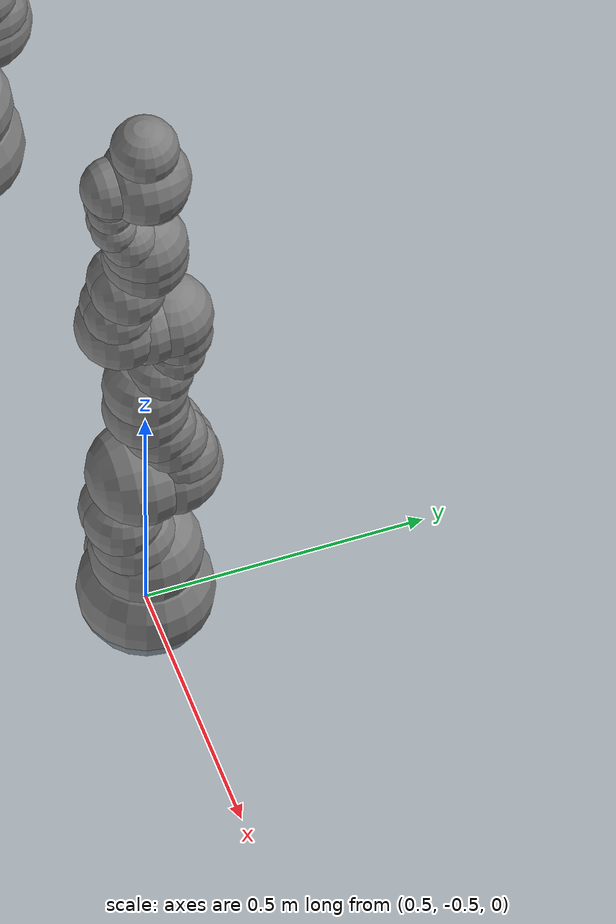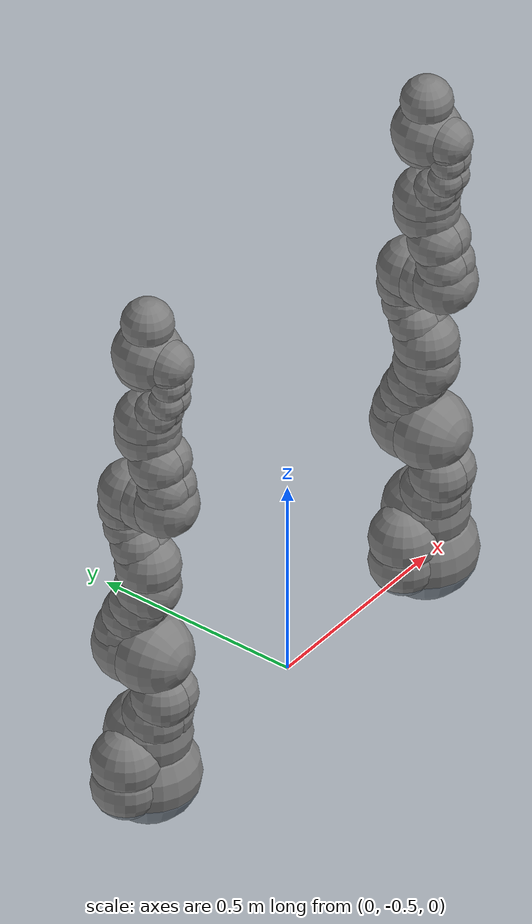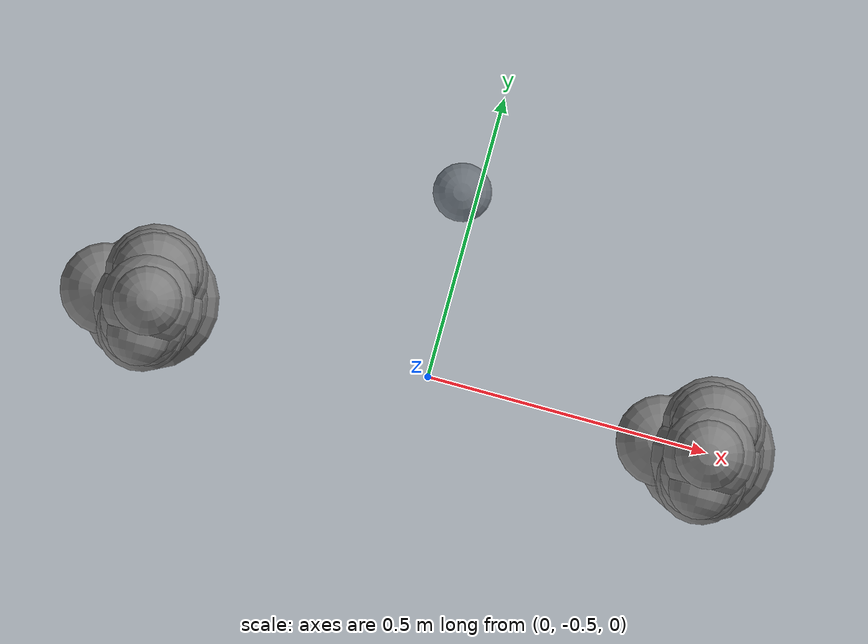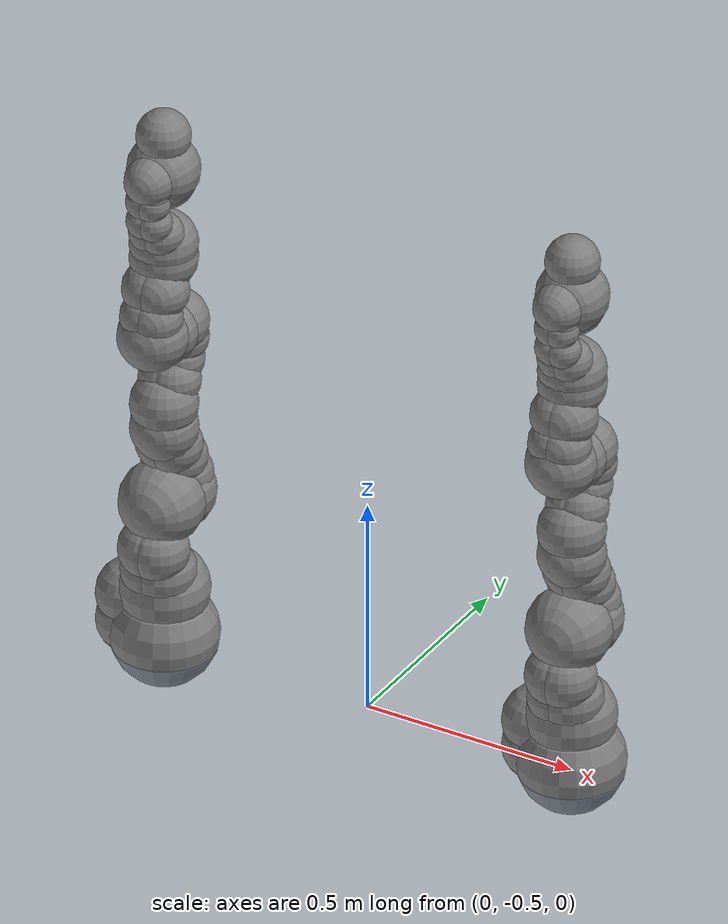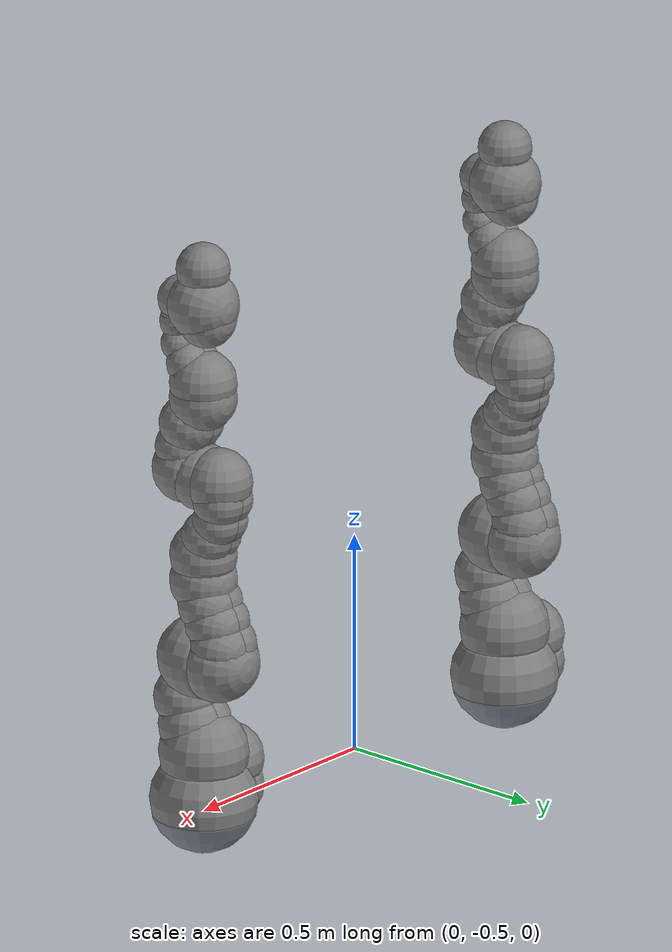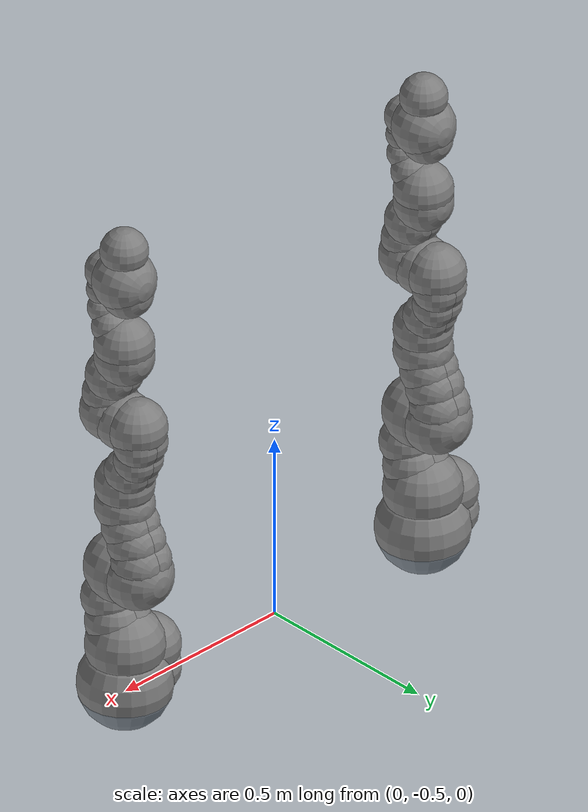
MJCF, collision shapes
<mujoco model="iiwa14 scene">
  <compiler angle="radian" meshdir="assets" autolimits="true"/>

  <option gravity="0 0 0"/>

  <default>
    <default class="iiwa">
      <material specular="0.5" shininess="0.25"/>
      <joint axis="0 0 1"/>
      <general gaintype="fixed" biastype="affine" gainprm="2000" biasprm="0 -2000 -200"/>
      <default class="joint1">
        <default class="joint2">
        </default>
      </default>
      <default class="joint3">
      </default>
      <default class="visual">
        <geom type="mesh" contype="0" conaffinity="0" group="2" material="gray"/>
      </default>
      <default class="collision">
        <geom group="3"/>
      </default>
    </default>

    <default class="iiwa_shade">
      <material specular="0.5" shininess="0.25"/>
      <joint axis="0 0 1"/>
      <general gaintype="fixed" biastype="affine" gainprm="2000" biasprm="0 -2000 -200"/>
      <default class="joint1_shade">
        <default class="joint2_shade">
        </default>
      </default>
      <default class="joint3_shade">
      </default>
      <default class="visual_shade">
        <geom type="mesh" contype="0" conaffinity="0" group="2" material="gray_shade"/>
      </default>
      <default class="collision_shade">
        <geom contype="0" conaffinity="0" group="3"/>
      </default>
    </default>
  </default>

  <asset>
    <material class="iiwa" name="gray" rgba="0.4 0.4 0.4 1"/>
    <material class="iiwa" name="light_gray" rgba="0.6 0.6 0.6 1"/>
    <material class="iiwa" name="black" rgba="0 0 0 1"/>
    <material class="iiwa" name="orange" rgba="1 0.423529 0.0392157 1"/>

    <material class="iiwa_shade" name="gray_shade" rgba="0.4 0.7 0.4 0.0000"/>
    <material class="iiwa_shade" name="light_gray_shade" rgba="0.6 0.9 0.6 0.0000"/>
    <material class="iiwa_shade" name="black_shade" rgba="0 0.3 0 0.0000"/>
    <material class="iiwa_shade" name="orange_shade" rgba="1 0.723529 0.0392157 0.0000"/>

    <mesh file="link_0.obj"/>
    <mesh file="link_1.obj"/>
    <mesh file="link_2_orange.obj"/>
    <mesh file="link_2_grey.obj"/>
    <mesh file="link_3.obj"/>
    <mesh file="band.obj"/>
    <mesh file="kuka.obj"/>
    <mesh file="link_4_orange.obj"/>
    <mesh file="link_4_grey.obj"/>
    <mesh file="link_5.obj"/>
    <mesh file="link_6_orange.obj"/>
    <mesh file="link_6_grey.obj"/>
    <mesh file="link_7.obj"/>

    <mesh scale="0.88 0.88 0.88" name="link_0_shade" file="link_0.obj"/>
    <mesh scale="0.88 0.88 0.88" name="link_1_shade" file="link_1.obj"/>
    <mesh scale="0.88 0.88 0.88" name="link_2_orange_shade" file="link_2_orange.obj"/>
    <mesh scale="0.88 0.88 0.88" name="link_2_grey_shade" file="link_2_grey.obj"/>
    <mesh scale="0.88 0.88 0.88" name="link_3_shade" file="link_3.obj"/>
    <mesh scale="0.88 0.88 0.88" name="band_shade" file="band.obj"/>
    <mesh scale="0.88 0.88 0.88" name="kuka_shade" file="kuka.obj"/>
    <mesh scale="0.88 0.88 0.88" name="link_4_orange_shade" file="link_4_orange.obj"/>
    <mesh scale="0.88 0.88 0.88" name="link_4_grey_shade" file="link_4_grey.obj"/>
    <mesh scale="0.88 0.88 0.88" name="link_5_shade" file="link_5.obj"/>
    <mesh scale="0.88 0.88 0.88" name="link_6_orange_shade" file="link_6_orange.obj"/>
    <mesh scale="0.88 0.88 0.88" name="link_6_grey_shade" file="link_6_grey.obj"/>
    <mesh scale="0.88 0.88 0.88" name="link_7_shade" file="link_7.obj"/>
  </asset>

  <statistic center="0.2 0 0.2" extent="1.0"/>

  <visual>
    <headlight diffuse="0.6 0.6 0.6" ambient="0.3 0.3 0.3" specular="0 0 0"/>
    <rgba haze="0.15 0.25 0.35 1"/>
    <global azimuth="-120" elevation="-20"/>
  </visual>

  <asset>
    <texture type="skybox" builtin="gradient" rgb1="0.3 0.5 0.7" rgb2="0 0 0" width="512" height="3072"/>
    <texture type="2d" name="groundplane" builtin="checker" mark="edge" rgb1="0.4 0.5 0.6" rgb2="0.3 0.4 0.5"
      markrgb="0.8 0.8 0.8" width="300" height="300"/>
    <material name="groundplane" texture="groundplane" texuniform="true" texrepeat="5 5" reflectance="0.2"/>
  </asset>

  <worldbody>

    <body name="model_instance_0" pos="-0.5 -0.5 0" euler="0 0 0">
      <body name="base_0" childclass="iiwa">
        <geom class="visual" mesh="link_0"/>
        <geom class="collision" size="0.12" pos="0 0 0.03"/>
        <geom class="collision" size="0.08" pos="-0.08 0 0.103"/>
        <geom class="collision" size="0.08" pos="-0.08 0 0.04"/>
        <geom class="collision" size="0.1" pos="0 0 0.14"/>
        <body name="link1_0" pos="0 0 0.1575">
          <joint name="joint1_0" class="joint1"/>
          <geom class="visual" mesh="link_1"/>
          <geom class="collision" size="0.08" pos="0 0 -0.0005"/>
          <geom class="collision" size="0.075" pos="0.01 -0.025 0.0425"/>
          <geom class="collision" size="0.075" pos="-0.01 -0.025 0.0425"/>
          <geom class="collision" size="0.07" pos="0.01 -0.045 0.1025"/>
          <geom class="collision" size="0.07" pos="-0.01 -0.045 0.1025"/>
          <body name="link2_0" pos="0 0 0.2025" quat="0 0 1 1">
            <joint name="joint2_0" class="joint2"/>
            <geom class="visual" material="orange" mesh="link_2_orange"/>
            <geom class="visual" mesh="link_2_grey"/>
            <geom class="collision" size="0.095" pos="0 0 -0.01"/>
            <geom class="collision" size="0.09" pos="0 0 0.045"/>
            <geom class="collision" size="0.07" pos="-0.01 0.04 0.054"/>
            <geom class="collision" size="0.065" pos="-0.01 0.09 0.04"/>
            <geom class="collision" size="0.065" pos="-0.01 0.13 0.02"/>
            <geom class="collision" size="0.07" pos="0.01 0.04 0.054"/>
            <geom class="collision" size="0.065" pos="0.01 0.09 0.04"/>
            <geom class="collision" size="0.065" pos="0.01 0.13 0.02"/>
            <geom class="collision" size="0.075" pos="0 0.18 0"/>
            <body name="link3_0" pos="0 0.2045 0" quat="0 0 1 1">
              <joint name="joint3_0" class="joint1"/>
              <geom class="visual" mesh="link_3"/>
              <geom class="visual" material="light_gray" mesh="band"/>
              <geom class="visual" material="black" mesh="kuka"/>
              <geom class="collision" size="0.075" pos="0 0 0.0355"/>
              <geom class="collision" size="0.06" pos="0.01 0.023 0.0855"/>
              <geom class="collision" size="0.055" pos="0.01 0.048 0.1255"/>
              <geom class="collision" size="0.06" pos="0.01 0.056 0.1755"/>
              <geom class="collision" size="0.06" pos="-0.01 0.023 0.0855"/>
              <geom class="collision" size="0.055" pos="-0.01 0.048 0.1255"/>
              <geom class="collision" size="0.06" pos="-0.01 0.056 0.1755"/>
              <geom class="collision" size="0.075" pos="0 0.045 0.2155"/>
              <geom class="collision" size="0.075" pos="0 0 0.2155"/>
              <body name="link4_0" pos="0 0 0.2155" quat="1 1 0 0">
                <joint name="joint4_0" class="joint2"/>
                <geom class="visual" material="orange" mesh="link_4_orange"/>
                <geom class="visual" mesh="link_4_grey"/>
                <geom class="collision" size="0.078" pos="0 0.01 0.046"/>
                <geom class="collision" size="0.06" pos="0.01 0.06 0.052"/>
                <geom class="collision" size="0.065" pos="0.01 0.12 0.034"/>
                <geom class="collision" size="0.06" pos="-0.01 0.06 0.052"/>
                <geom class="collision" size="0.065" pos="-0.01 0.12 0.034"/>
                <geom class="collision" size="0.075" pos="0 0.184 0"/>
                <body name="link5_0" pos="0 0.1845 0" quat="0 0 1 1">
                  <joint name="joint5_0" class="joint1"/>
                  <geom class="visual" mesh="link_5"/>
                  <geom class="visual" material="light_gray" mesh="band"/>
                  <geom class="visual" material="black" mesh="kuka"/>
                  <geom class="collision" size="0.075" pos="0 0 0.0335"/>
                  <geom class="collision" size="0.05" pos="-0.012 0.031 0.0755"/>
                  <geom class="collision" size="0.05" pos="0.012 0.031 0.0755"/>
                  <geom class="collision" size="0.04" pos="-0.012 0.06 0.1155"/>
                  <geom class="collision" size="0.04" pos="0.012 0.06 0.1155"/>
                  <geom class="collision" size="0.04" pos="-0.01 0.065 0.1655"/>
                  <geom class="collision" size="0.04" pos="0.01 0.065 0.1655"/>
                  <geom class="collision" size="0.035" pos="-0.012 0.065 0.1855"/>
                  <geom class="collision" size="0.035" pos="0.012 0.065 0.1855"/>
                  <body name="link6_0" pos="0 0 0.2155" quat="1 1 0 0">
                    <joint name="joint6_0" class="joint2"/>
                    <geom class="visual" material="orange" mesh="link_6_orange"/>
                    <geom class="visual" mesh="link_6_grey"/>
                    <geom class="collision" size="0.055" pos="0 0 -0.059"/>
                    <geom class="collision" size="0.065" pos="0 -0.03 0.011"/>
                    <geom class="collision" size="0.08"/>
                    <body name="link7_0" pos="0 0.081 0" quat="0 0 1 1">
                      <joint name="joint7_0" class="joint3"/>
                      <geom class="visual" mesh="link_7"/>
                      <geom class="collision" size="0.06" pos="0 0 0.001"/>
                    </body>
                  </body>
                </body>
              </body>
            </body>
          </body>
        </body>
      </body>
    </body>

    <body name="model_instance_1" pos=" 0.5 -0.5 0" euler="0 0 0">
      <body name="base_1" childclass="iiwa">
        <geom class="visual" mesh="link_0"/>
        <geom class="collision" size="0.12" pos="0 0 0.03"/>
        <geom class="collision" size="0.08" pos="-0.08 0 0.103"/>
        <geom class="collision" size="0.08" pos="-0.08 0 0.04"/>
        <geom class="collision" size="0.1" pos="0 0 0.14"/>
        <body name="link1_1" pos="0 0 0.1575">
          <joint name="joint1_1" class="joint1"/>
          <geom class="visual" mesh="link_1"/>
          <geom class="collision" size="0.08" pos="0 0 -0.0005"/>
          <geom class="collision" size="0.075" pos="0.01 -0.025 0.0425"/>
          <geom class="collision" size="0.075" pos="-0.01 -0.025 0.0425"/>
          <geom class="collision" size="0.07" pos="0.01 -0.045 0.1025"/>
          <geom class="collision" size="0.07" pos="-0.01 -0.045 0.1025"/>
          <body name="link2_1" pos="0 0 0.2025" quat="0 0 1 1">
            <joint name="joint2_1" class="joint2"/>
            <geom class="visual" material="orange" mesh="link_2_orange"/>
            <geom class="visual" mesh="link_2_grey"/>
            <geom class="collision" size="0.095" pos="0 0 -0.01"/>
            <geom class="collision" size="0.09" pos="0 0 0.045"/>
            <geom class="collision" size="0.07" pos="-0.01 0.04 0.054"/>
            <geom class="collision" size="0.065" pos="-0.01 0.09 0.04"/>
            <geom class="collision" size="0.065" pos="-0.01 0.13 0.02"/>
            <geom class="collision" size="0.07" pos="0.01 0.04 0.054"/>
            <geom class="collision" size="0.065" pos="0.01 0.09 0.04"/>
            <geom class="collision" size="0.065" pos="0.01 0.13 0.02"/>
            <geom class="collision" size="0.075" pos="0 0.18 0"/>
            <body name="link3_1" pos="0 0.2045 0" quat="0 0 1 1">
              <joint name="joint3_1" class="joint1"/>
              <geom class="visual" mesh="link_3"/>
              <geom class="visual" material="light_gray" mesh="band"/>
              <geom class="visual" material="black" mesh="kuka"/>
              <geom class="collision" size="0.075" pos="0 0 0.0355"/>
              <geom class="collision" size="0.06" pos="0.01 0.023 0.0855"/>
              <geom class="collision" size="0.055" pos="0.01 0.048 0.1255"/>
              <geom class="collision" size="0.06" pos="0.01 0.056 0.1755"/>
              <geom class="collision" size="0.06" pos="-0.01 0.023 0.0855"/>
              <geom class="collision" size="0.055" pos="-0.01 0.048 0.1255"/>
              <geom class="collision" size="0.06" pos="-0.01 0.056 0.1755"/>
              <geom class="collision" size="0.075" pos="0 0.045 0.2155"/>
              <geom class="collision" size="0.075" pos="0 0 0.2155"/>
              <body name="link4_1" pos="0 0 0.2155" quat="1 1 0 0">
                <joint name="joint4_1" class="joint2"/>
                <geom class="visual" material="orange" mesh="link_4_orange"/>
                <geom class="visual" mesh="link_4_grey"/>
                <geom class="collision" size="0.078" pos="0 0.01 0.046"/>
                <geom class="collision" size="0.06" pos="0.01 0.06 0.052"/>
                <geom class="collision" size="0.065" pos="0.01 0.12 0.034"/>
                <geom class="collision" size="0.06" pos="-0.01 0.06 0.052"/>
                <geom class="collision" size="0.065" pos="-0.01 0.12 0.034"/>
                <geom class="collision" size="0.075" pos="0 0.184 0"/>
                <body name="link5_1" pos="0 0.1845 0" quat="0 0 1 1">
                  <joint name="joint5_1" class="joint1"/>
                  <geom class="visual" mesh="link_5"/>
                  <geom class="visual" material="light_gray" mesh="band"/>
                  <geom class="visual" material="black" mesh="kuka"/>
                  <geom class="collision" size="0.075" pos="0 0 0.0335"/>
                  <geom class="collision" size="0.05" pos="-0.012 0.031 0.0755"/>
                  <geom class="collision" size="0.05" pos="0.012 0.031 0.0755"/>
                  <geom class="collision" size="0.04" pos="-0.012 0.06 0.1155"/>
                  <geom class="collision" size="0.04" pos="0.012 0.06 0.1155"/>
                  <geom class="collision" size="0.04" pos="-0.01 0.065 0.1655"/>
                  <geom class="collision" size="0.04" pos="0.01 0.065 0.1655"/>
                  <geom class="collision" size="0.035" pos="-0.012 0.065 0.1855"/>
                  <geom class="collision" size="0.035" pos="0.012 0.065 0.1855"/>
                  <body name="link6_1" pos="0 0 0.2155" quat="1 1 0 0">
                    <joint name="joint6_1" class="joint2"/>
                    <geom class="visual" material="orange" mesh="link_6_orange"/>
                    <geom class="visual" mesh="link_6_grey"/>
                    <geom class="collision" size="0.055" pos="0 0 -0.059"/>
                    <geom class="collision" size="0.065" pos="0 -0.03 0.011"/>
                    <geom class="collision" size="0.08"/>
                    <body name="link7_1" pos="0 0.081 0" quat="0 0 1 1">
                      <joint name="joint7_1" class="joint3"/>
                      <geom class="visual" mesh="link_7"/>
                      <geom class="collision" size="0.06" pos="0 0 0.001"/>
                    </body>
                  </body>
                </body>
              </body>
            </body>
          </body>
        </body>
      </body>
    </body>

    <body name="model_shade_0" pos="-0.5 -0.5 0" euler="0 0 0">
      <body name="base_0_shade" childclass="iiwa_shade">
        <geom class="visual_shade" mesh="link_0_shade"/>
        <geom class="collision_shade" size="0.12" pos="0 0 0.03"/>
        <geom class="collision_shade" size="0.08" pos="-0.08 0 0.103"/>
        <geom class="collision_shade" size="0.08" pos="-0.08 0 0.04"/>
        <geom class="collision_shade" size="0.1" pos="0 0 0.14"/>
        <body name="link1_0_shade" pos="0 0 0.1575">
          <joint name="joint1_0_shade" class="joint1_shade"/>
          <geom class="visual_shade" mesh="link_1_shade"/>
          <geom class="collision_shade" size="0.08" pos="0 0 -0.0005"/>
          <geom class="collision_shade" size="0.075" pos="0.01 -0.025 0.0425"/>
          <geom class="collision_shade" size="0.075" pos="-0.01 -0.025 0.0425"/>
          <geom class="collision_shade" size="0.07" pos="0.01 -0.045 0.1025"/>
          <geom class="collision_shade" size="0.07" pos="-0.01 -0.045 0.1025"/>
          <body name="link2_0_shade" pos="0 0 0.2025" quat="0 0 1 1">
            <joint name="joint2_0_shade" class="joint2_shade"/>
            <geom class="visual_shade" material="orange_shade" mesh="link_2_orange_shade"/>
            <geom class="visual_shade" mesh="link_2_grey_shade"/>
            <geom class="collision_shade" size="0.095" pos="0 0 -0.01"/>
            <geom class="collision_shade" size="0.09" pos="0 0 0.045"/>
            <geom class="collision_shade" size="0.07" pos="-0.01 0.04 0.054"/>
            <geom class="collision_shade" size="0.065" pos="-0.01 0.09 0.04"/>
            <geom class="collision_shade" size="0.065" pos="-0.01 0.13 0.02"/>
            <geom class="collision_shade" size="0.07" pos="0.01 0.04 0.054"/>
            <geom class="collision_shade" size="0.065" pos="0.01 0.09 0.04"/>
            <geom class="collision_shade" size="0.065" pos="0.01 0.13 0.02"/>
            <geom class="collision_shade" size="0.075" pos="0 0.18 0"/>
            <body name="link3_0_shade" pos="0 0.2045 0" quat="0 0 1 1">
              <joint name="joint3_0_shade" class="joint1_shade"/>
              <geom class="visual_shade" mesh="link_3_shade"/>
              <geom class="visual_shade" material="light_gray_shade" mesh="band_shade"/>
              <geom class="visual_shade" material="black_shade" mesh="kuka_shade"/>
              <geom class="collision_shade" size="0.075" pos="0 0 0.0355"/>
              <geom class="collision_shade" size="0.06" pos="0.01 0.023 0.0855"/>
              <geom class="collision_shade" size="0.055" pos="0.01 0.048 0.1255"/>
              <geom class="collision_shade" size="0.06" pos="0.01 0.056 0.1755"/>
              <geom class="collision_shade" size="0.06" pos="-0.01 0.023 0.0855"/>
              <geom class="collision_shade" size="0.055" pos="-0.01 0.048 0.1255"/>
              <geom class="collision_shade" size="0.06" pos="-0.01 0.056 0.1755"/>
              <geom class="collision_shade" size="0.075" pos="0 0.045 0.2155"/>
              <geom class="collision_shade" size="0.075" pos="0 0 0.2155"/>
              <body name="link4_0_shade" pos="0 0 0.2155" quat="1 1 0 0">
                <joint name="joint4_0_shade" class="joint2_shade"/>
                <geom class="visual_shade" material="orange_shade" mesh="link_4_orange_shade"/>
                <geom class="visual_shade" mesh="link_4_grey_shade"/>
                <geom class="collision_shade" size="0.078" pos="0 0.01 0.046"/>
                <geom class="collision_shade" size="0.06" pos="0.01 0.06 0.052"/>
                <geom class="collision_shade" size="0.065" pos="0.01 0.12 0.034"/>
                <geom class="collision_shade" size="0.06" pos="-0.01 0.06 0.052"/>
                <geom class="collision_shade" size="0.065" pos="-0.01 0.12 0.034"/>
                <geom class="collision_shade" size="0.075" pos="0 0.184 0"/>
                <body name="link5_0_shade" pos="0 0.1845 0" quat="0 0 1 1">
                  <joint name="joint5_0_shade" class="joint1_shade"/>
                  <geom class="visual_shade" mesh="link_5_shade"/>
                  <geom class="visual_shade" material="light_gray_shade" mesh="band_shade"/>
                  <geom class="visual_shade" material="black_shade" mesh="kuka_shade"/>
                  <geom class="collision_shade" size="0.075" pos="0 0 0.0335"/>
                  <geom class="collision_shade" size="0.05" pos="-0.012 0.031 0.0755"/>
                  <geom class="collision_shade" size="0.05" pos="0.012 0.031 0.0755"/>
                  <geom class="collision_shade" size="0.04" pos="-0.012 0.06 0.1155"/>
                  <geom class="collision_shade" size="0.04" pos="0.012 0.06 0.1155"/>
                  <geom class="collision_shade" size="0.04" pos="-0.01 0.065 0.1655"/>
                  <geom class="collision_shade" size="0.04" pos="0.01 0.065 0.1655"/>
                  <geom class="collision_shade" size="0.035" pos="-0.012 0.065 0.1855"/>
                  <geom class="collision_shade" size="0.035" pos="0.012 0.065 0.1855"/>
                  <body name="link6_0_shade" pos="0 0 0.2155" quat="1 1 0 0">
                    <joint name="joint6_0_shade" class="joint2_shade"/>
                    <geom class="visual_shade" material="orange_shade" mesh="link_6_orange_shade"/>
                    <geom class="visual_shade" mesh="link_6_grey_shade"/>
                    <geom class="collision_shade" size="0.055" pos="0 0 -0.059"/>
                    <geom class="collision_shade" size="0.065" pos="0 -0.03 0.011"/>
                    <geom class="collision_shade" size="0.08"/>
                    <body name="link7_0_shade" pos="0 0.081 0" quat="0 0 1 1">
                      <joint name="joint7_0_shade" class="joint3_shade"/>
                      <geom class="visual_shade" mesh="link_7_shade"/>
                      <geom class="collision_shade" size="0.06" pos="0 0 0.001"/>
                    </body>
                  </body>
                </body>
              </body>
            </body>
          </body>
        </body>
      </body>
    </body>

    <body name="model_shade_1" pos=" 0.5 -0.5 0" euler="0 0 0">
      <body name="base_1_shade" childclass="iiwa_shade">
        <geom class="visual_shade" mesh="link_0_shade"/>
        <geom class="collision_shade" size="0.12" pos="0 0 0.03"/>
        <geom class="collision_shade" size="0.08" pos="-0.08 0 0.103"/>
        <geom class="collision_shade" size="0.08" pos="-0.08 0 0.04"/>
        <geom class="collision_shade" size="0.1" pos="0 0 0.14"/>
        <body name="link1_1_shade" pos="0 0 0.1575">
          <joint name="joint1_1_shade" class="joint1_shade"/>
          <geom class="visual_shade" mesh="link_1_shade"/>
          <geom class="collision_shade" size="0.08" pos="0 0 -0.0005"/>
          <geom class="collision_shade" size="0.075" pos="0.01 -0.025 0.0425"/>
          <geom class="collision_shade" size="0.075" pos="-0.01 -0.025 0.0425"/>
          <geom class="collision_shade" size="0.07" pos="0.01 -0.045 0.1025"/>
          <geom class="collision_shade" size="0.07" pos="-0.01 -0.045 0.1025"/>
          <body name="link2_1_shade" pos="0 0 0.2025" quat="0 0 1 1">
            <joint name="joint2_1_shade" class="joint2_shade"/>
            <geom class="visual_shade" material="orange_shade" mesh="link_2_orange_shade"/>
            <geom class="visual_shade" mesh="link_2_grey_shade"/>
            <geom class="collision_shade" size="0.095" pos="0 0 -0.01"/>
            <geom class="collision_shade" size="0.09" pos="0 0 0.045"/>
            <geom class="collision_shade" size="0.07" pos="-0.01 0.04 0.054"/>
            <geom class="collision_shade" size="0.065" pos="-0.01 0.09 0.04"/>
            <geom class="collision_shade" size="0.065" pos="-0.01 0.13 0.02"/>
            <geom class="collision_shade" size="0.07" pos="0.01 0.04 0.054"/>
            <geom class="collision_shade" size="0.065" pos="0.01 0.09 0.04"/>
            <geom class="collision_shade" size="0.065" pos="0.01 0.13 0.02"/>
            <geom class="collision_shade" size="0.075" pos="0 0.18 0"/>
            <body name="link3_1_shade" pos="0 0.2045 0" quat="0 0 1 1">
              <joint name="joint3_1_shade" class="joint1_shade"/>
              <geom class="visual_shade" mesh="link_3_shade"/>
              <geom class="visual_shade" material="light_gray_shade" mesh="band_shade"/>
              <geom class="visual_shade" material="black_shade" mesh="kuka_shade"/>
              <geom class="collision_shade" size="0.075" pos="0 0 0.0355"/>
              <geom class="collision_shade" size="0.06" pos="0.01 0.023 0.0855"/>
              <geom class="collision_shade" size="0.055" pos="0.01 0.048 0.1255"/>
              <geom class="collision_shade" size="0.06" pos="0.01 0.056 0.1755"/>
              <geom class="collision_shade" size="0.06" pos="-0.01 0.023 0.0855"/>
              <geom class="collision_shade" size="0.055" pos="-0.01 0.048 0.1255"/>
              <geom class="collision_shade" size="0.06" pos="-0.01 0.056 0.1755"/>
              <geom class="collision_shade" size="0.075" pos="0 0.045 0.2155"/>
              <geom class="collision_shade" size="0.075" pos="0 0 0.2155"/>
              <body name="link4_1_shade" pos="0 0 0.2155" quat="1 1 0 0">
                <joint name="joint4_1_shade" class="joint2_shade"/>
                <geom class="visual_shade" material="orange_shade" mesh="link_4_orange_shade"/>
                <geom class="visual_shade" mesh="link_4_grey_shade"/>
                <geom class="collision_shade" size="0.078" pos="0 0.01 0.046"/>
                <geom class="collision_shade" size="0.06" pos="0.01 0.06 0.052"/>
                <geom class="collision_shade" size="0.065" pos="0.01 0.12 0.034"/>
                <geom class="collision_shade" size="0.06" pos="-0.01 0.06 0.052"/>
                <geom class="collision_shade" size="0.065" pos="-0.01 0.12 0.034"/>
                <geom class="collision_shade" size="0.075" pos="0 0.184 0"/>
                <body name="link5_1_shade" pos="0 0.1845 0" quat="0 0 1 1">
                  <joint name="joint5_1_shade" class="joint1_shade"/>
                  <geom class="visual_shade" mesh="link_5_shade"/>
                  <geom class="visual_shade" material="light_gray_shade" mesh="band_shade"/>
                  <geom class="visual_shade" material="black_shade" mesh="kuka_shade"/>
                  <geom class="collision_shade" size="0.075" pos="0 0 0.0335"/>
                  <geom class="collision_shade" size="0.05" pos="-0.012 0.031 0.0755"/>
                  <geom class="collision_shade" size="0.05" pos="0.012 0.031 0.0755"/>
                  <geom class="collision_shade" size="0.04" pos="-0.012 0.06 0.1155"/>
                  <geom class="collision_shade" size="0.04" pos="0.012 0.06 0.1155"/>
                  <geom class="collision_shade" size="0.04" pos="-0.01 0.065 0.1655"/>
                  <geom class="collision_shade" size="0.04" pos="0.01 0.065 0.1655"/>
                  <geom class="collision_shade" size="0.035" pos="-0.012 0.065 0.1855"/>
                  <geom class="collision_shade" size="0.035" pos="0.012 0.065 0.1855"/>
                  <body name="link6_1_shade" pos="0 0 0.2155" quat="1 1 0 0">
                    <joint name="joint6_1_shade" class="joint2_shade"/>
                    <geom class="visual_shade" material="orange_shade" mesh="link_6_orange_shade"/>
                    <geom class="visual_shade" mesh="link_6_grey_shade"/>
                    <geom class="collision_shade" size="0.055" pos="0 0 -0.059"/>
                    <geom class="collision_shade" size="0.065" pos="0 -0.03 0.011"/>
                    <geom class="collision_shade" size="0.08"/>
                    <body name="link7_1_shade" pos="0 0.081 0" quat="0 0 1 1">
                      <joint name="joint7_1_shade" class="joint3_shade"/>
                      <geom class="visual_shade" mesh="link_7_shade"/>
                      <geom class="collision_shade" size="0.06" pos="0 0 0.001"/>
                    </body>
                  </body>
                </body>
              </body>
            </body>
          </body>
        </body>
      </body>
    </body>

    <body name="sudo sphere">
        <geom name="sudo sphere 1" type="sphere" size="0.1" pos="0.0 0.0 -100.0" contype="0" conaffinity="0"/>
    </body>
    <light pos="0 0 1.5" dir="0 0 -1" directional="true"/>
    <geom name="floor" size="0 0 0.05" type="plane" material="groundplane"/>
  </worldbody>

  <contact>
    <exclude body1="base_0" body2="link1_0"/>
    <exclude body1="base_0" body2="link2_0"/>
    <exclude body1="base_0" body2="link3_0"/>
    <exclude body1="link1_0" body2="link3_0"/>
    <exclude body1="link3_0" body2="link5_0"/>
    <exclude body1="link4_0" body2="link7_0"/>
    <exclude body1="link5_0" body2="link7_0"/>

    <exclude body1="base_1" body2="link1_1"/>
    <exclude body1="base_1" body2="link2_1"/>
    <exclude body1="base_1" body2="link3_1"/>
    <exclude body1="link1_1" body2="link3_1"/>
    <exclude body1="link3_1" body2="link5_1"/>
    <exclude body1="link4_1" body2="link7_1"/>
    <exclude body1="link5_1" body2="link7_1"/>
  </contact>
</mujoco>
